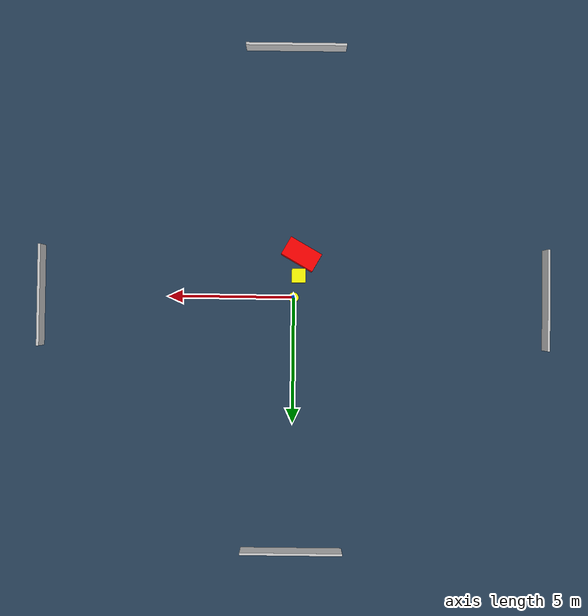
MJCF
<?xml version="1.0" ?>
<mujoco model="generated_environment">
  <option timestep="0.01" integrator="RK4" cone="elliptic"/>
  <default>
    <geom density="1"/>
  </default>
  <asset>
    <texture builtin="gradient" height="3072" name="skybox" rgb1="0.3 0.5 0.7" rgb2="0 0 0" type="skybox" width="512"/>
    <texture builtin="checker" height="300" name="groundplane" rgb1="0.2 0.3 0.4" rgb2="0.1 0.2 0.3" type="2d" width="300"/>
    <material name="groundplane" reflectance="0.2" texrepeat="5 5" texture="groundplane"/>
  </asset>
  <worldbody>
    <light dir="0 0 -1" directional="true" pos="0 0 1.5"/>
    <geom condim="3" friction="0.5 0.005 0.001" material="groundplane" name="floor" pos="0 0 0" size="0 0 0.05" type="plane"/>
    <body name="walls">
      <geom name="wall_1" condim="4" pos="-10.0 0.0 0.3" rgba="0.800000011920929 0.800000011920929 0.800000011920929 1.0" size="0.05 2.0 0.3" type="box"/>
      <geom name="wall_2" condim="4" pos="10.0 0.0 0.3" rgba="0.800000011920929 0.800000011920929 0.800000011920929 1.0" size="0.05 2.0 0.3" type="box"/>
      <geom name="wall_3" condim="4" pos="0.0 -10.0 0.3" rgba="0.800000011920929 0.800000011920929 0.800000011920929 1.0" size="2.0 0.05 0.3" type="box"/>
      <geom name="wall_4" condim="4" pos="0.0 10.0 0.3" rgba="0.800000011920929 0.800000011920929 0.800000011920929 1.0" size="2.0 0.05 0.3" type="box"/>
    </body>
    <body name="robot">
      <joint name="joint_x" type="slide" pos="0 0 0" axis="1 0 0"/>
      <joint name="joint_y" type="slide" pos="0 0 0" axis="0 1 0"/>
      <geom name="robot" type="cylinder" pos="0.0 0.0 0.2" size="0.2 0.2 0.0" mass="5.0" friction="1.0 0.005 0.0001" condim="4" rgba="1.0 1.0 0.0 1.0"/>
    </body>
    <body name="obstacle_1_movable">
      <geom name="obstacle_1_movable" condim="4" pos="-0.18852473332593467 -0.8647822714405061 0.3" euler="0 0 0.38015440820998947" friction="0.0 0.005 0.001" rgba="1.0 1.0 0.0 1.0" size="0.2672993118252892 0.27465606633612194 0.3" type="box" mass="0.1"/>
      <joint type="free"/>
    </body>
    <body name="obstacle_2_static">
      <geom name="obstacle_2_static" condim="4" pos="-0.29704333358081114 -1.7030691137612837 0.3" euler="0 0 330.2794838218684" friction="0.0 0.005 0.001" rgba="1.0 0.0 0.0 1.0" size="0.7021199523799144 0.39096326739243437 0.3" type="box"/>
    </body>
  </worldbody>
  <actuator>
    <motor name="actuator_x" joint="joint_x" gear="1" ctrlrange="-1 1"/>
    <motor name="actuator_y" joint="joint_y" gear="1" ctrlrange="-1 1"/>
  </actuator>
</mujoco>
